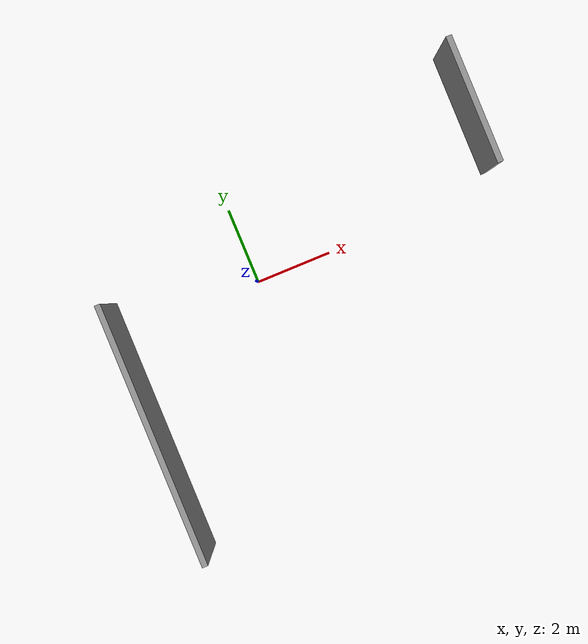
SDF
<?xml version='1.0'?>
<sdf version='1.6'>
  <model name='basic_model_2'>
    <pose frame=''>1.40189 -1.12502 0 0 -0 0</pose>
    <link name='Wall_10'>
      <collision name='Wall_10_Collision'>
        <geometry>
          <box>
            <size>3.25 0.15 2.5</size>
          </box>
        </geometry>
        <pose frame=''>0 0 1.25 0 -0 0</pose>
      </collision>
      <visual name='Wall_10_Visual'>
        <pose frame=''>0 0 1.25 0 -0 0</pose>
        <geometry>
          <box>
            <size>3.25 0.15 2.5</size>
          </box>
        </geometry>
        <material>
          <script>
            <uri>file://media/materials/scripts/gazebo.material</uri>
            <name>Gazebo/Grey</name>
          </script>
          <ambient>1 1 1 1</ambient>
        </material>
        <meta>
          <layer>0</layer>
        </meta>
      </visual>
      <pose frame=''>5.09394 3.1138 0 0 -0 1.5708</pose>
    </link>
    <link name='Wall_2'>
      <collision name='Wall_2_Collision'>
        <geometry>
          <box>
            <size>6.75 0.15 2.5</size>
          </box>
        </geometry>
        <pose frame=''>0 0 1.25 0 -0 0</pose>
      </collision>
      <visual name='Wall_2_Visual'>
        <pose frame=''>0 0 1.25 0 -0 0</pose>
        <geometry>
          <box>
            <size>6.75 0.15 2.5</size>
          </box>
        </geometry>
        <material>
          <script>
            <uri>file://media/materials/scripts/gazebo.material</uri>
            <name>Gazebo/Grey</name>
          </script>
          <ambient>1 1 1 1</ambient>
        </material>
        <meta>
          <layer>0</layer>
        </meta>
      </visual>
      <pose frame=''>-5.09394 -1.3638 0 0 -0 -1.5708</pose>
    </link>
    <static>1</static>
  </model>
</sdf>
